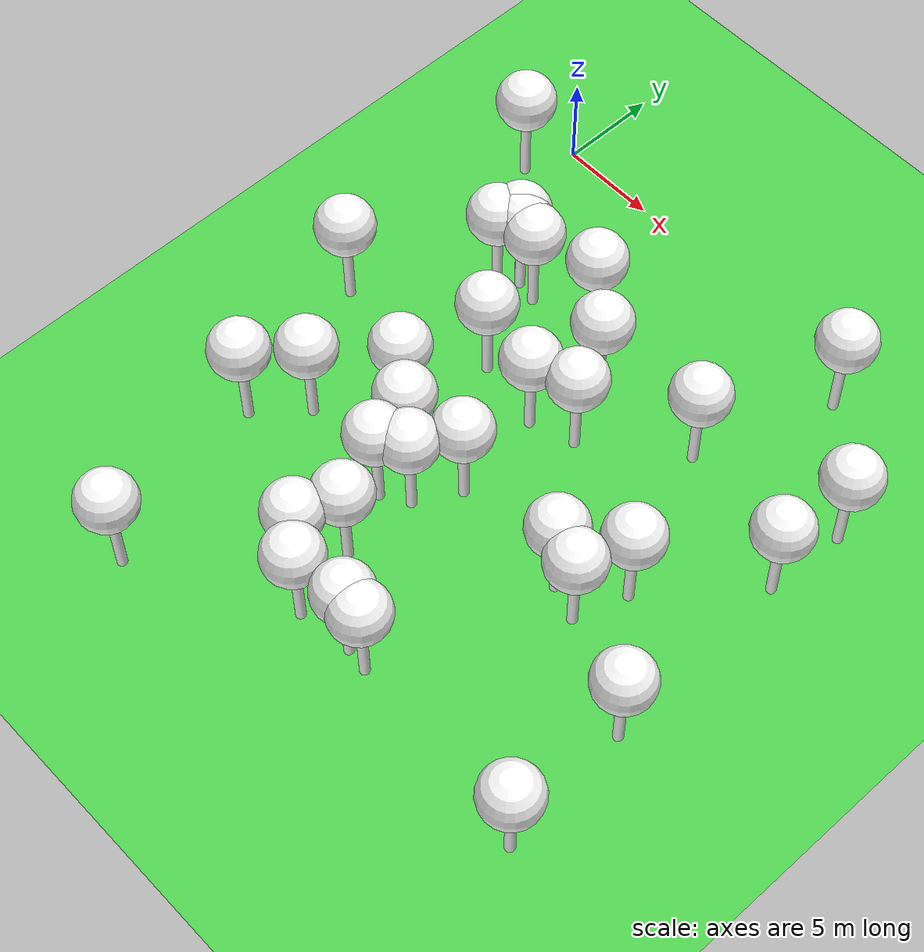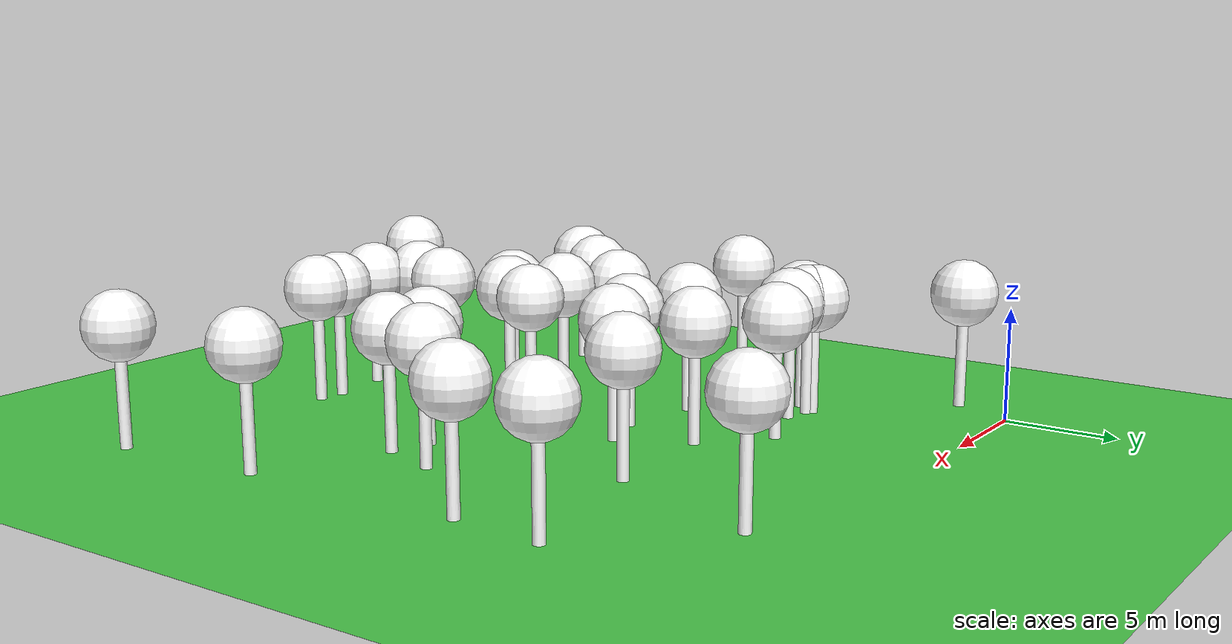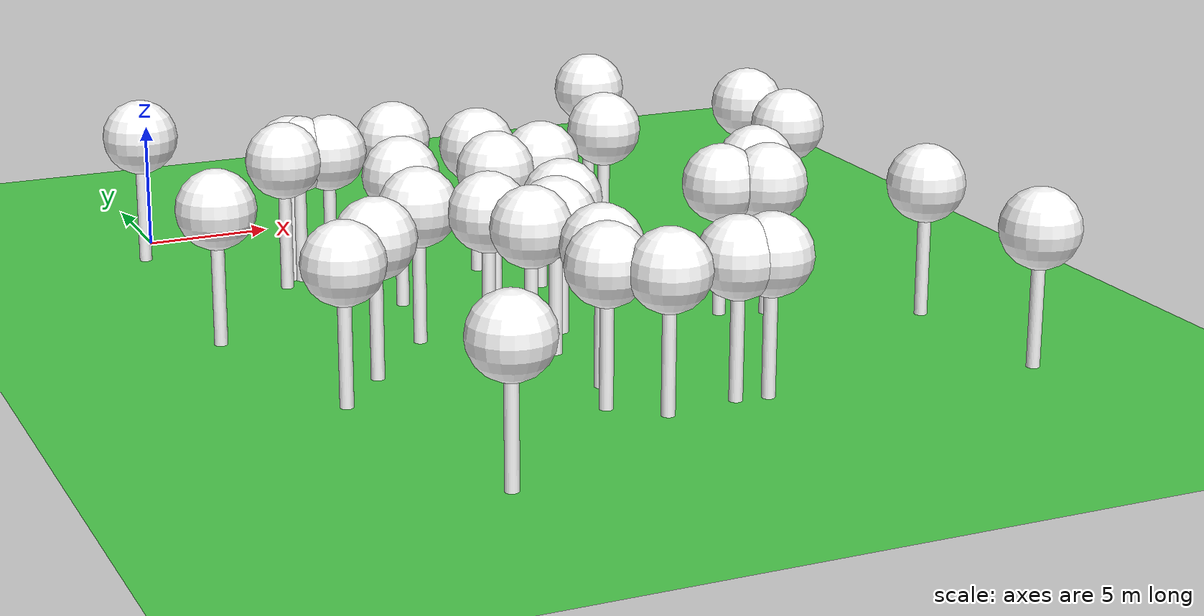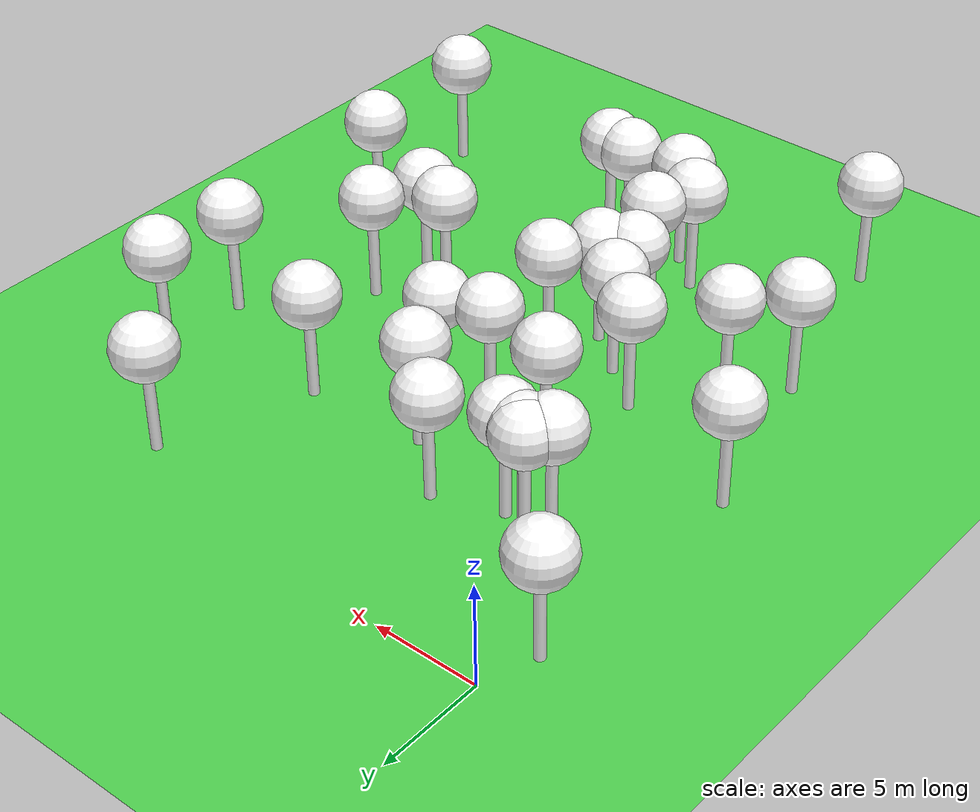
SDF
<sdf version="1.8">
 <world name="forest_world">
  <model name="tree_simple496">
   <static>1</static>
   <link name="link">
    <pose>0 0 0.1 0 -0 0</pose>
    <collision name="collision_trunk">
     <pose>0 0 2 0 -0 0</pose>
     <geometry><cylinder><radius>0.25</radius><length>4</length></cylinder></geometry>
    </collision>
    <collision name="collision_treetop">
     <pose>0 0 5.2 0 -0 0</pose>
     <geometry><sphere><radius>1.5</radius></sphere></geometry>
    </collision>
    <visual name="trunk_496">
     <pose>0 0 2 0 -0 0</pose>
     <geometry><cylinder><radius>0.25</radius><length>4</length></cylinder></geometry>
     <material>
      <ambient>0.5 0.5 0.5 1</ambient>
      <diffuse>1.0 1.0 1.0 1</diffuse>
      <specular>0.0 0.0 0.0 1</specular>
      <pbr>
       <metal>
        <albedo_map>file://textures/tree_simple_trunk.jpg</albedo_map>
        <metalness>0.0</metalness>
        <roughness>0.8</roughness>
       </metal>
      </pbr>
     </material>
    </visual>
    <visual name="treetop_496">
     <pose>0 0 5.2 0 -0 0</pose>
     <geometry><sphere><radius>1.5</radius></sphere></geometry>
     <material>
      <ambient>0.5 0.5 0.5 1</ambient>
      <diffuse>1.0 1.0 1.0 1</diffuse>
      <specular>0.0 0.0 0.0 1</specular>
      <pbr>
       <metal>
        <albedo_map>file://textures/tree_simple_treetop.jpg</albedo_map>
        <metalness>0.0</metalness>
        <roughness>0.9</roughness>
       </metal>
      </pbr>
     </material>
    </visual>
   </link>
   <pose>13.6194298432 -26.9856291803 0 0 -0 0</pose>
  </model>
  <model name="tree_simple478">
   <static>1</static>
   <link name="link">
    <pose>0 0 0.1 0 -0 0</pose>
    <collision name="collision_trunk">
     <pose>0 0 2 0 -0 0</pose>
     <geometry><cylinder><radius>0.25</radius><length>4</length></cylinder></geometry>
    </collision>
    <collision name="collision_treetop">
     <pose>0 0 5.2 0 -0 0</pose>
     <geometry><sphere><radius>1.5</radius></sphere></geometry>
    </collision>
    <visual name="trunk_478">
     <pose>0 0 2 0 -0 0</pose>
     <geometry><cylinder><radius>0.25</radius><length>4</length></cylinder></geometry>
     <material>
      <ambient>0.5 0.5 0.5 1</ambient>
      <diffuse>1.0 1.0 1.0 1</diffuse>
      <specular>0.0 0.0 0.0 1</specular>
      <pbr>
       <metal>
        <albedo_map>file://textures/tree_simple_trunk.jpg</albedo_map>
        <metalness>0.0</metalness>
        <roughness>0.8</roughness>
       </metal>
      </pbr>
     </material>
    </visual>
    <visual name="treetop_478">
     <pose>0 0 5.2 0 -0 0</pose>
     <geometry><sphere><radius>1.5</radius></sphere></geometry>
     <material>
      <ambient>0.5 0.5 0.5 1</ambient>
      <diffuse>1.0 1.0 1.0 1</diffuse>
      <specular>0.0 0.0 0.0 1</specular>
      <pbr>
       <metal>
        <albedo_map>file://textures/tree_simple_treetop.jpg</albedo_map>
        <metalness>0.0</metalness>
        <roughness>0.9</roughness>
       </metal>
      </pbr>
     </material>
    </visual>
   </link>
   <pose>6.74093075138 -12.3162984353 0 0 -0 0</pose>
  </model>
  <model name="tree_simple472">
   <static>1</static>
   <link name="link">
    <pose>0 0 0.1 0 -0 0</pose>
    <collision name="collision_trunk">
     <pose>0 0 2 0 -0 0</pose>
     <geometry><cylinder><radius>0.25</radius><length>4</length></cylinder></geometry>
    </collision>
    <collision name="collision_treetop">
     <pose>0 0 5.2 0 -0 0</pose>
     <geometry><sphere><radius>1.5</radius></sphere></geometry>
    </collision>
    <visual name="trunk_472">
     <pose>0 0 2 0 -0 0</pose>
     <geometry><cylinder><radius>0.25</radius><length>4</length></cylinder></geometry>
     <material>
      <ambient>0.5 0.5 0.5 1</ambient>
      <diffuse>1.0 1.0 1.0 1</diffuse>
      <specular>0.0 0.0 0.0 1</specular>
      <pbr>
       <metal>
        <albedo_map>file://textures/tree_simple_trunk.jpg</albedo_map>
        <metalness>0.0</metalness>
        <roughness>0.8</roughness>
       </metal>
      </pbr>
     </material>
    </visual>
    <visual name="treetop_472">
     <pose>0 0 5.2 0 -0 0</pose>
     <geometry><sphere><radius>1.5</radius></sphere></geometry>
     <material>
      <ambient>0.5 0.5 0.5 1</ambient>
      <diffuse>1.0 1.0 1.0 1</diffuse>
      <specular>0.0 0.0 0.0 1</specular>
      <pbr>
       <metal>
        <albedo_map>file://textures/tree_simple_treetop.jpg</albedo_map>
        <metalness>0.0</metalness>
        <roughness>0.9</roughness>
       </metal>
      </pbr>
     </material>
    </visual>
   </link>
   <pose>9.92228677952 -23.8303447852 0 0 -0 0</pose>
  </model>
  <model name="tree_simple463">
   <static>1</static>
   <link name="link">
    <pose>0 0 0.1 0 -0 0</pose>
    <collision name="collision_trunk">
     <pose>0 0 2 0 -0 0</pose>
     <geometry><cylinder><radius>0.25</radius><length>4</length></cylinder></geometry>
    </collision>
    <collision name="collision_treetop">
     <pose>0 0 5.2 0 -0 0</pose>
     <geometry><sphere><radius>1.5</radius></sphere></geometry>
    </collision>
    <visual name="trunk_463">
     <pose>0 0 2 0 -0 0</pose>
     <geometry><cylinder><radius>0.25</radius><length>4</length></cylinder></geometry>
     <material>
      <ambient>0.5 0.5 0.5 1</ambient>
      <diffuse>1.0 1.0 1.0 1</diffuse>
      <specular>0.0 0.0 0.0 1</specular>
      <pbr>
       <metal>
        <albedo_map>file://textures/tree_simple_trunk.jpg</albedo_map>
        <metalness>0.0</metalness>
        <roughness>0.8</roughness>
       </metal>
      </pbr>
     </material>
    </visual>
    <visual name="treetop_463">
     <pose>0 0 5.2 0 -0 0</pose>
     <geometry><sphere><radius>1.5</radius></sphere></geometry>
     <material>
      <ambient>0.5 0.5 0.5 1</ambient>
      <diffuse>1.0 1.0 1.0 1</diffuse>
      <specular>0.0 0.0 0.0 1</specular>
      <pbr>
       <metal>
        <albedo_map>file://textures/tree_simple_treetop.jpg</albedo_map>
        <metalness>0.0</metalness>
        <roughness>0.9</roughness>
       </metal>
      </pbr>
     </material>
    </visual>
   </link>
   <pose>4.14452898467 -7.71733475474 0 0 -0 0</pose>
  </model>
  <model name="tree_simple451">
   <static>1</static>
   <link name="link">
    <pose>0 0 0.1 0 -0 0</pose>
    <collision name="collision_trunk">
     <pose>0 0 2 0 -0 0</pose>
     <geometry><cylinder><radius>0.25</radius><length>4</length></cylinder></geometry>
    </collision>
    <collision name="collision_treetop">
     <pose>0 0 5.2 0 -0 0</pose>
     <geometry><sphere><radius>1.5</radius></sphere></geometry>
    </collision>
    <visual name="trunk_451">
     <pose>0 0 2 0 -0 0</pose>
     <geometry><cylinder><radius>0.25</radius><length>4</length></cylinder></geometry>
     <material>
      <ambient>0.5 0.5 0.5 1</ambient>
      <diffuse>1.0 1.0 1.0 1</diffuse>
      <specular>0.0 0.0 0.0 1</specular>
      <pbr>
       <metal>
        <albedo_map>file://textures/tree_simple_trunk.jpg</albedo_map>
        <metalness>0.0</metalness>
        <roughness>0.8</roughness>
       </metal>
      </pbr>
     </material>
    </visual>
    <visual name="treetop_451">
     <pose>0 0 5.2 0 -0 0</pose>
     <geometry><sphere><radius>1.5</radius></sphere></geometry>
     <material>
      <ambient>0.5 0.5 0.5 1</ambient>
      <diffuse>1.0 1.0 1.0 1</diffuse>
      <specular>0.0 0.0 0.0 1</specular>
      <pbr>
       <metal>
        <albedo_map>file://textures/tree_simple_treetop.jpg</albedo_map>
        <metalness>0.0</metalness>
        <roughness>0.9</roughness>
       </metal>
      </pbr>
     </material>
    </visual>
   </link>
   <pose>25.0880879186 -28.1508348671 0 0 -0 0</pose>
  </model>
  <model name="tree_simple439">
   <static>1</static>
   <link name="link">
    <pose>0 0 0.1 0 -0 0</pose>
    <collision name="collision_trunk">
     <pose>0 0 2 0 -0 0</pose>
     <geometry><cylinder><radius>0.25</radius><length>4</length></cylinder></geometry>
    </collision>
    <collision name="collision_treetop">
     <pose>0 0 5.2 0 -0 0</pose>
     <geometry><sphere><radius>1.5</radius></sphere></geometry>
    </collision>
    <visual name="trunk_439">
     <pose>0 0 2 0 -0 0</pose>
     <geometry><cylinder><radius>0.25</radius><length>4</length></cylinder></geometry>
     <material>
      <ambient>0.5 0.5 0.5 1</ambient>
      <diffuse>1.0 1.0 1.0 1</diffuse>
      <specular>0.0 0.0 0.0 1</specular>
      <pbr>
       <metal>
        <albedo_map>file://textures/tree_simple_trunk.jpg</albedo_map>
        <metalness>0.0</metalness>
        <roughness>0.8</roughness>
       </metal>
      </pbr>
     </material>
    </visual>
    <visual name="treetop_439">
     <pose>0 0 5.2 0 -0 0</pose>
     <geometry><sphere><radius>1.5</radius></sphere></geometry>
     <material>
      <ambient>0.5 0.5 0.5 1</ambient>
      <diffuse>1.0 1.0 1.0 1</diffuse>
      <specular>0.0 0.0 0.0 1</specular>
      <pbr>
       <metal>
        <albedo_map>file://textures/tree_simple_treetop.jpg</albedo_map>
        <metalness>0.0</metalness>
        <roughness>0.9</roughness>
       </metal>
      </pbr>
     </material>
    </visual>
   </link>
   <pose>8.56501316053 -20.7640585998 0 0 -0 0</pose>
  </model>
  <model name="tree_simple432">
   <static>1</static>
   <link name="link">
    <pose>0 0 0.1 0 -0 0</pose>
    <collision name="collision_trunk">
     <pose>0 0 2 0 -0 0</pose>
     <geometry><cylinder><radius>0.25</radius><length>4</length></cylinder></geometry>
    </collision>
    <collision name="collision_treetop">
     <pose>0 0 5.2 0 -0 0</pose>
     <geometry><sphere><radius>1.5</radius></sphere></geometry>
    </collision>
    <visual name="trunk_432">
     <pose>0 0 2 0 -0 0</pose>
     <geometry><cylinder><radius>0.25</radius><length>4</length></cylinder></geometry>
     <material>
      <ambient>0.5 0.5 0.5 1</ambient>
      <diffuse>1.0 1.0 1.0 1</diffuse>
      <specular>0.0 0.0 0.0 1</specular>
      <pbr>
       <metal>
        <albedo_map>file://textures/tree_simple_trunk.jpg</albedo_map>
        <metalness>0.0</metalness>
        <roughness>0.8</roughness>
       </metal>
      </pbr>
     </material>
    </visual>
    <visual name="treetop_432">
     <pose>0 0 5.2 0 -0 0</pose>
     <geometry><sphere><radius>1.5</radius></sphere></geometry>
     <material>
      <ambient>0.5 0.5 0.5 1</ambient>
      <diffuse>1.0 1.0 1.0 1</diffuse>
      <specular>0.0 0.0 0.0 1</specular>
      <pbr>
       <metal>
        <albedo_map>file://textures/tree_simple_treetop.jpg</albedo_map>
        <metalness>0.0</metalness>
        <roughness>0.9</roughness>
       </metal>
      </pbr>
     </material>
    </visual>
   </link>
   <pose>8.39657738542 -6.88848549894 0 0 -0 0</pose>
  </model>
  <model name="tree_simple428">
   <static>1</static>
   <link name="link">
    <pose>0 0 0.1 0 -0 0</pose>
    <collision name="collision_trunk">
     <pose>0 0 2 0 -0 0</pose>
     <geometry><cylinder><radius>0.25</radius><length>4</length></cylinder></geometry>
    </collision>
    <collision name="collision_treetop">
     <pose>0 0 5.2 0 -0 0</pose>
     <geometry><sphere><radius>1.5</radius></sphere></geometry>
    </collision>
    <visual name="trunk_428">
     <pose>0 0 2 0 -0 0</pose>
     <geometry><cylinder><radius>0.25</radius><length>4</length></cylinder></geometry>
     <material>
      <ambient>0.5 0.5 0.5 1</ambient>
      <diffuse>1.0 1.0 1.0 1</diffuse>
      <specular>0.0 0.0 0.0 1</specular>
      <pbr>
       <metal>
        <albedo_map>file://textures/tree_simple_trunk.jpg</albedo_map>
        <metalness>0.0</metalness>
        <roughness>0.8</roughness>
       </metal>
      </pbr>
     </material>
    </visual>
    <visual name="treetop_428">
     <pose>0 0 5.2 0 -0 0</pose>
     <geometry><sphere><radius>1.5</radius></sphere></geometry>
     <material>
      <ambient>0.5 0.5 0.5 1</ambient>
      <diffuse>1.0 1.0 1.0 1</diffuse>
      <specular>0.0 0.0 0.0 1</specular>
      <pbr>
       <metal>
        <albedo_map>file://textures/tree_simple_treetop.jpg</albedo_map>
        <metalness>0.0</metalness>
        <roughness>0.9</roughness>
       </metal>
      </pbr>
     </material>
    </visual>
   </link>
   <pose>9.87663766252 -19.9509422297 0 0 -0 0</pose>
  </model>
  <model name="tree_simple389">
   <static>1</static>
   <link name="link">
    <pose>0 0 0.1 0 -0 0</pose>
    <collision name="collision_trunk">
     <pose>0 0 2 0 -0 0</pose>
     <geometry><cylinder><radius>0.25</radius><length>4</length></cylinder></geometry>
    </collision>
    <collision name="collision_treetop">
     <pose>0 0 5.2 0 -0 0</pose>
     <geometry><sphere><radius>1.5</radius></sphere></geometry>
    </collision>
    <visual name="trunk_389">
     <pose>0 0 2 0 -0 0</pose>
     <geometry><cylinder><radius>0.25</radius><length>4</length></cylinder></geometry>
     <material>
      <ambient>0.5 0.5 0.5 1</ambient>
      <diffuse>1.0 1.0 1.0 1</diffuse>
      <specular>0.0 0.0 0.0 1</specular>
      <pbr>
       <metal>
        <albedo_map>file://textures/tree_simple_trunk.jpg</albedo_map>
        <metalness>0.0</metalness>
        <roughness>0.8</roughness>
       </metal>
      </pbr>
     </material>
    </visual>
    <visual name="treetop_389">
     <pose>0 0 5.2 0 -0 0</pose>
     <geometry><sphere><radius>1.5</radius></sphere></geometry>
     <material>
      <ambient>0.5 0.5 0.5 1</ambient>
      <diffuse>1.0 1.0 1.0 1</diffuse>
      <specular>0.0 0.0 0.0 1</specular>
      <pbr>
       <metal>
        <albedo_map>file://textures/tree_simple_treetop.jpg</albedo_map>
        <metalness>0.0</metalness>
        <roughness>0.9</roughness>
       </metal>
      </pbr>
     </material>
    </visual>
   </link>
   <pose>12.5934036343 -12.2598342596 0 0 -0 0</pose>
  </model>
  <model name="tree_simple377">
   <static>1</static>
   <link name="link">
    <pose>0 0 0.1 0 -0 0</pose>
    <collision name="collision_trunk">
     <pose>0 0 2 0 -0 0</pose>
     <geometry><cylinder><radius>0.25</radius><length>4</length></cylinder></geometry>
    </collision>
    <collision name="collision_treetop">
     <pose>0 0 5.2 0 -0 0</pose>
     <geometry><sphere><radius>1.5</radius></sphere></geometry>
    </collision>
    <visual name="trunk_377">
     <pose>0 0 2 0 -0 0</pose>
     <geometry><cylinder><radius>0.25</radius><length>4</length></cylinder></geometry>
     <material>
      <ambient>0.5 0.5 0.5 1</ambient>
      <diffuse>1.0 1.0 1.0 1</diffuse>
      <specular>0.0 0.0 0.0 1</specular>
      <pbr>
       <metal>
        <albedo_map>file://textures/tree_simple_trunk.jpg</albedo_map>
        <metalness>0.0</metalness>
        <roughness>0.8</roughness>
       </metal>
      </pbr>
     </material>
    </visual>
    <visual name="treetop_377">
     <pose>0 0 5.2 0 -0 0</pose>
     <geometry><sphere><radius>1.5</radius></sphere></geometry>
     <material>
      <ambient>0.5 0.5 0.5 1</ambient>
      <diffuse>1.0 1.0 1.0 1</diffuse>
      <specular>0.0 0.0 0.0 1</specular>
      <pbr>
       <metal>
        <albedo_map>file://textures/tree_simple_treetop.jpg</albedo_map>
        <metalness>0.0</metalness>
        <roughness>0.9</roughness>
       </metal>
      </pbr>
     </material>
    </visual>
   </link>
   <pose>10.8205708978 -27.3699142702 0 0 -0 0</pose>
  </model>
  <model name="tree_simple327">
   <static>1</static>
   <link name="link">
    <pose>0 0 0.1 0 -0 0</pose>
    <collision name="collision_trunk">
     <pose>0 0 2 0 -0 0</pose>
     <geometry><cylinder><radius>0.25</radius><length>4</length></cylinder></geometry>
    </collision>
    <collision name="collision_treetop">
     <pose>0 0 5.2 0 -0 0</pose>
     <geometry><sphere><radius>1.5</radius></sphere></geometry>
    </collision>
    <visual name="trunk_327">
     <pose>0 0 2 0 -0 0</pose>
     <geometry><cylinder><radius>0.25</radius><length>4</length></cylinder></geometry>
     <material>
      <ambient>0.5 0.5 0.5 1</ambient>
      <diffuse>1.0 1.0 1.0 1</diffuse>
      <specular>0.0 0.0 0.0 1</specular>
      <pbr>
       <metal>
        <albedo_map>file://textures/tree_simple_trunk.jpg</albedo_map>
        <metalness>0.0</metalness>
        <roughness>0.8</roughness>
       </metal>
      </pbr>
     </material>
    </visual>
    <visual name="treetop_327">
     <pose>0 0 5.2 0 -0 0</pose>
     <geometry><sphere><radius>1.5</radius></sphere></geometry>
     <material>
      <ambient>0.5 0.5 0.5 1</ambient>
      <diffuse>1.0 1.0 1.0 1</diffuse>
      <specular>0.0 0.0 0.0 1</specular>
      <pbr>
       <metal>
        <albedo_map>file://textures/tree_simple_treetop.jpg</albedo_map>
        <metalness>0.0</metalness>
        <roughness>0.9</roughness>
       </metal>
      </pbr>
     </material>
    </visual>
   </link>
   <pose>5.78438571624 -16.7663148306 0 0 -0 0</pose>
  </model>
  <model name="tree_simple317">
   <static>1</static>
   <link name="link">
    <pose>0 0 0.1 0 -0 0</pose>
    <collision name="collision_trunk">
     <pose>0 0 2 0 -0 0</pose>
     <geometry><cylinder><radius>0.25</radius><length>4</length></cylinder></geometry>
    </collision>
    <collision name="collision_treetop">
     <pose>0 0 5.2 0 -0 0</pose>
     <geometry><sphere><radius>1.5</radius></sphere></geometry>
    </collision>
    <visual name="trunk_317">
     <pose>0 0 2 0 -0 0</pose>
     <geometry><cylinder><radius>0.25</radius><length>4</length></cylinder></geometry>
     <material>
      <ambient>0.5 0.5 0.5 1</ambient>
      <diffuse>1.0 1.0 1.0 1</diffuse>
      <specular>0.0 0.0 0.0 1</specular>
      <pbr>
       <metal>
        <albedo_map>file://textures/tree_simple_trunk.jpg</albedo_map>
        <metalness>0.0</metalness>
        <roughness>0.8</roughness>
       </metal>
      </pbr>
     </material>
    </visual>
    <visual name="treetop_317">
     <pose>0 0 5.2 0 -0 0</pose>
     <geometry><sphere><radius>1.5</radius></sphere></geometry>
     <material>
      <ambient>0.5 0.5 0.5 1</ambient>
      <diffuse>1.0 1.0 1.0 1</diffuse>
      <specular>0.0 0.0 0.0 1</specular>
      <pbr>
       <metal>
        <albedo_map>file://textures/tree_simple_treetop.jpg</albedo_map>
        <metalness>0.0</metalness>
        <roughness>0.9</roughness>
       </metal>
      </pbr>
     </material>
    </visual>
   </link>
   <pose>1.01183279708 -22.2370296953 0 0 -0 0</pose>
  </model>
  <model name="tree_simple316">
   <static>1</static>
   <link name="link">
    <pose>0 0 0.1 0 -0 0</pose>
    <collision name="collision_trunk">
     <pose>0 0 2 0 -0 0</pose>
     <geometry><cylinder><radius>0.25</radius><length>4</length></cylinder></geometry>
    </collision>
    <collision name="collision_treetop">
     <pose>0 0 5.2 0 -0 0</pose>
     <geometry><sphere><radius>1.5</radius></sphere></geometry>
    </collision>
    <visual name="trunk_316">
     <pose>0 0 2 0 -0 0</pose>
     <geometry><cylinder><radius>0.25</radius><length>4</length></cylinder></geometry>
     <material>
      <ambient>0.5 0.5 0.5 1</ambient>
      <diffuse>1.0 1.0 1.0 1</diffuse>
      <specular>0.0 0.0 0.0 1</specular>
      <pbr>
       <metal>
        <albedo_map>file://textures/tree_simple_trunk.jpg</albedo_map>
        <metalness>0.0</metalness>
        <roughness>0.8</roughness>
       </metal>
      </pbr>
     </material>
    </visual>
    <visual name="treetop_316">
     <pose>0 0 5.2 0 -0 0</pose>
     <geometry><sphere><radius>1.5</radius></sphere></geometry>
     <material>
      <ambient>0.5 0.5 0.5 1</ambient>
      <diffuse>1.0 1.0 1.0 1</diffuse>
      <specular>0.0 0.0 0.0 1</specular>
      <pbr>
       <metal>
        <albedo_map>file://textures/tree_simple_treetop.jpg</albedo_map>
        <metalness>0.0</metalness>
        <roughness>0.9</roughness>
       </metal>
      </pbr>
     </material>
    </visual>
   </link>
   <pose>19.3529599153 -1.91242662106 0 0 -0 0</pose>
  </model>
  <model name="tree_simple309">
   <static>1</static>
   <link name="link">
    <pose>0 0 0.1 0 -0 0</pose>
    <collision name="collision_trunk">
     <pose>0 0 2 0 -0 0</pose>
     <geometry><cylinder><radius>0.25</radius><length>4</length></cylinder></geometry>
    </collision>
    <collision name="collision_treetop">
     <pose>0 0 5.2 0 -0 0</pose>
     <geometry><sphere><radius>1.5</radius></sphere></geometry>
    </collision>
    <visual name="trunk_309">
     <pose>0 0 2 0 -0 0</pose>
     <geometry><cylinder><radius>0.25</radius><length>4</length></cylinder></geometry>
     <material>
      <ambient>0.5 0.5 0.5 1</ambient>
      <diffuse>1.0 1.0 1.0 1</diffuse>
      <specular>0.0 0.0 0.0 1</specular>
      <pbr>
       <metal>
        <albedo_map>file://textures/tree_simple_trunk.jpg</albedo_map>
        <metalness>0.0</metalness>
        <roughness>0.8</roughness>
       </metal>
      </pbr>
     </material>
    </visual>
    <visual name="treetop_309">
     <pose>0 0 5.2 0 -0 0</pose>
     <geometry><sphere><radius>1.5</radius></sphere></geometry>
     <material>
      <ambient>0.5 0.5 0.5 1</ambient>
      <diffuse>1.0 1.0 1.0 1</diffuse>
      <specular>0.0 0.0 0.0 1</specular>
      <pbr>
       <metal>
        <albedo_map>file://textures/tree_simple_treetop.jpg</albedo_map>
        <metalness>0.0</metalness>
        <roughness>0.9</roughness>
       </metal>
      </pbr>
     </material>
    </visual>
   </link>
   <pose>19.1748935323 -18.8000539767 0 0 -0 0</pose>
  </model>
  <model name="tree_simple292">
   <static>1</static>
   <link name="link">
    <pose>0 0 0.1 0 -0 0</pose>
    <collision name="collision_trunk">
     <pose>0 0 2 0 -0 0</pose>
     <geometry><cylinder><radius>0.25</radius><length>4</length></cylinder></geometry>
    </collision>
    <collision name="collision_treetop">
     <pose>0 0 5.2 0 -0 0</pose>
     <geometry><sphere><radius>1.5</radius></sphere></geometry>
    </collision>
    <visual name="trunk_292">
     <pose>0 0 2 0 -0 0</pose>
     <geometry><cylinder><radius>0.25</radius><length>4</length></cylinder></geometry>
     <material>
      <ambient>0.5 0.5 0.5 1</ambient>
      <diffuse>1.0 1.0 1.0 1</diffuse>
      <specular>0.0 0.0 0.0 1</specular>
      <pbr>
       <metal>
        <albedo_map>file://textures/tree_simple_trunk.jpg</albedo_map>
        <metalness>0.0</metalness>
        <roughness>0.8</roughness>
       </metal>
      </pbr>
     </material>
    </visual>
    <visual name="treetop_292">
     <pose>0 0 5.2 0 -0 0</pose>
     <geometry><sphere><radius>1.5</radius></sphere></geometry>
     <material>
      <ambient>0.5 0.5 0.5 1</ambient>
      <diffuse>1.0 1.0 1.0 1</diffuse>
      <specular>0.0 0.0 0.0 1</specular>
      <pbr>
       <metal>
        <albedo_map>file://textures/tree_simple_treetop.jpg</albedo_map>
        <metalness>0.0</metalness>
        <roughness>0.9</roughness>
       </metal>
      </pbr>
     </material>
    </visual>
   </link>
   <pose>16.8917664362 -8.8290409333 0 0 -0 0</pose>
  </model>
  <model name="tree_simple222">
   <static>1</static>
   <link name="link">
    <pose>0 0 0.1 0 -0 0</pose>
    <collision name="collision_trunk">
     <pose>0 0 2 0 -0 0</pose>
     <geometry><cylinder><radius>0.25</radius><length>4</length></cylinder></geometry>
    </collision>
    <collision name="collision_treetop">
     <pose>0 0 5.2 0 -0 0</pose>
     <geometry><sphere><radius>1.5</radius></sphere></geometry>
    </collision>
    <visual name="trunk_222">
     <pose>0 0 2 0 -0 0</pose>
     <geometry><cylinder><radius>0.25</radius><length>4</length></cylinder></geometry>
     <material>
      <ambient>0.5 0.5 0.5 1</ambient>
      <diffuse>1.0 1.0 1.0 1</diffuse>
      <specular>0.0 0.0 0.0 1</specular>
      <pbr>
       <metal>
        <albedo_map>file://textures/tree_simple_trunk.jpg</albedo_map>
        <metalness>0.0</metalness>
        <roughness>0.8</roughness>
       </metal>
      </pbr>
     </material>
    </visual>
    <visual name="treetop_222">
     <pose>0 0 5.2 0 -0 0</pose>
     <geometry><sphere><radius>1.5</radius></sphere></geometry>
     <material>
      <ambient>0.5 0.5 0.5 1</ambient>
      <diffuse>1.0 1.0 1.0 1</diffuse>
      <specular>0.0 0.0 0.0 1</specular>
      <pbr>
       <metal>
        <albedo_map>file://textures/tree_simple_treetop.jpg</albedo_map>
        <metalness>0.0</metalness>
        <roughness>0.9</roughness>
       </metal>
      </pbr>
     </material>
    </visual>
   </link>
   <pose>3.92504774623 -7.51224141252 0 0 -0 0</pose>
  </model>
  <model name="tree_simple211">
   <static>1</static>
   <link name="link">
    <pose>0 0 0.1 0 -0 0</pose>
    <collision name="collision_trunk">
     <pose>0 0 2 0 -0 0</pose>
     <geometry><cylinder><radius>0.25</radius><length>4</length></cylinder></geometry>
    </collision>
    <collision name="collision_treetop">
     <pose>0 0 5.2 0 -0 0</pose>
     <geometry><sphere><radius>1.5</radius></sphere></geometry>
    </collision>
    <visual name="trunk_211">
     <pose>0 0 2 0 -0 0</pose>
     <geometry><cylinder><radius>0.25</radius><length>4</length></cylinder></geometry>
     <material>
      <ambient>0.5 0.5 0.5 1</ambient>
      <diffuse>1.0 1.0 1.0 1</diffuse>
      <specular>0.0 0.0 0.0 1</specular>
      <pbr>
       <metal>
        <albedo_map>file://textures/tree_simple_trunk.jpg</albedo_map>
        <metalness>0.0</metalness>
        <roughness>0.8</roughness>
       </metal>
      </pbr>
     </material>
    </visual>
    <visual name="treetop_211">
     <pose>0 0 5.2 0 -0 0</pose>
     <geometry><sphere><radius>1.5</radius></sphere></geometry>
     <material>
      <ambient>0.5 0.5 0.5 1</ambient>
      <diffuse>1.0 1.0 1.0 1</diffuse>
      <specular>0.0 0.0 0.0 1</specular>
      <pbr>
       <metal>
        <albedo_map>file://textures/tree_simple_treetop.jpg</albedo_map>
        <metalness>0.0</metalness>
        <roughness>0.9</roughness>
       </metal>
      </pbr>
     </material>
    </visual>
   </link>
   <pose>24.1088627432 -11.2741546154 0 0 -0 0</pose>
  </model>
  <model name="tree_simple195">
   <static>1</static>
   <link name="link">
    <pose>0 0 0.1 0 -0 0</pose>
    <collision name="collision_trunk">
     <pose>0 0 2 0 -0 0</pose>
     <geometry><cylinder><radius>0.25</radius><length>4</length></cylinder></geometry>
    </collision>
    <collision name="collision_treetop">
     <pose>0 0 5.2 0 -0 0</pose>
     <geometry><sphere><radius>1.5</radius></sphere></geometry>
    </collision>
    <visual name="trunk_195">
     <pose>0 0 2 0 -0 0</pose>
     <geometry><cylinder><radius>0.25</radius><length>4</length></cylinder></geometry>
     <material>
      <ambient>0.5 0.5 0.5 1</ambient>
      <diffuse>1.0 1.0 1.0 1</diffuse>
      <specular>0.0 0.0 0.0 1</specular>
      <pbr>
       <metal>
        <albedo_map>file://textures/tree_simple_trunk.jpg</albedo_map>
        <metalness>0.0</metalness>
        <roughness>0.8</roughness>
       </metal>
      </pbr>
     </material>
    </visual>
    <visual name="treetop_195">
     <pose>0 0 5.2 0 -0 0</pose>
     <geometry><sphere><radius>1.5</radius></sphere></geometry>
     <material>
      <ambient>0.5 0.5 0.5 1</ambient>
      <diffuse>1.0 1.0 1.0 1</diffuse>
      <specular>0.0 0.0 0.0 1</specular>
      <pbr>
       <metal>
        <albedo_map>file://textures/tree_simple_treetop.jpg</albedo_map>
        <metalness>0.0</metalness>
        <roughness>0.9</roughness>
       </metal>
      </pbr>
     </material>
    </visual>
   </link>
   <pose>2.97634626893 -19.931363898 0 0 -0 0</pose>
  </model>
  <model name="tree_simple191">
   <static>1</static>
   <link name="link">
    <pose>0 0 0.1 0 -0 0</pose>
    <collision name="collision_trunk">
     <pose>0 0 2 0 -0 0</pose>
     <geometry><cylinder><radius>0.25</radius><length>4</length></cylinder></geometry>
    </collision>
    <collision name="collision_treetop">
     <pose>0 0 5.2 0 -0 0</pose>
     <geometry><sphere><radius>1.5</radius></sphere></geometry>
    </collision>
    <visual name="trunk_191">
     <pose>0 0 2 0 -0 0</pose>
     <geometry><cylinder><radius>0.25</radius><length>4</length></cylinder></geometry>
     <material>
      <ambient>0.5 0.5 0.5 1</ambient>
      <diffuse>1.0 1.0 1.0 1</diffuse>
      <specular>0.0 0.0 0.0 1</specular>
      <pbr>
       <metal>
        <albedo_map>file://textures/tree_simple_trunk.jpg</albedo_map>
        <metalness>0.0</metalness>
        <roughness>0.8</roughness>
       </metal>
      </pbr>
     </material>
    </visual>
    <visual name="treetop_191">
     <pose>0 0 5.2 0 -0 0</pose>
     <geometry><sphere><radius>1.5</radius></sphere></geometry>
     <material>
      <ambient>0.5 0.5 0.5 1</ambient>
      <diffuse>1.0 1.0 1.0 1</diffuse>
      <specular>0.0 0.0 0.0 1</specular>
      <pbr>
       <metal>
        <albedo_map>file://textures/tree_simple_treetop.jpg</albedo_map>
        <metalness>0.0</metalness>
        <roughness>0.9</roughness>
       </metal>
      </pbr>
     </material>
    </visual>
   </link>
   <pose>7.88783183775 -18.3803184039 0 0 -0 0</pose>
  </model>
  <model name="tree_simple178">
   <static>1</static>
   <link name="link">
    <pose>0 0 0.1 0 -0 0</pose>
    <collision name="collision_trunk">
     <pose>0 0 2 0 -0 0</pose>
     <geometry><cylinder><radius>0.25</radius><length>4</length></cylinder></geometry>
    </collision>
    <collision name="collision_treetop">
     <pose>0 0 5.2 0 -0 0</pose>
     <geometry><sphere><radius>1.5</radius></sphere></geometry>
    </collision>
    <visual name="trunk_178">
     <pose>0 0 2 0 -0 0</pose>
     <geometry><cylinder><radius>0.25</radius><length>4</length></cylinder></geometry>
     <material>
      <ambient>0.5 0.5 0.5 1</ambient>
      <diffuse>1.0 1.0 1.0 1</diffuse>
      <specular>0.0 0.0 0.0 1</specular>
      <pbr>
       <metal>
        <albedo_map>file://textures/tree_simple_trunk.jpg</albedo_map>
        <metalness>0.0</metalness>
        <roughness>0.8</roughness>
       </metal>
      </pbr>
     </material>
    </visual>
    <visual name="treetop_178">
     <pose>0 0 5.2 0 -0 0</pose>
     <geometry><sphere><radius>1.5</radius></sphere></geometry>
     <material>
      <ambient>0.5 0.5 0.5 1</ambient>
      <diffuse>1.0 1.0 1.0 1</diffuse>
      <specular>0.0 0.0 0.0 1</specular>
      <pbr>
       <metal>
        <albedo_map>file://textures/tree_simple_treetop.jpg</albedo_map>
        <metalness>0.0</metalness>
        <roughness>0.9</roughness>
       </metal>
      </pbr>
     </material>
    </visual>
   </link>
   <pose>24.3791750449 -7.18218424398 0 0 -0 0</pose>
  </model>
  <model name="tree_simple168">
   <static>1</static>
   <link name="link">
    <pose>0 0 0.1 0 -0 0</pose>
    <collision name="collision_trunk">
     <pose>0 0 2 0 -0 0</pose>
     <geometry><cylinder><radius>0.25</radius><length>4</length></cylinder></geometry>
    </collision>
    <collision name="collision_treetop">
     <pose>0 0 5.2 0 -0 0</pose>
     <geometry><sphere><radius>1.5</radius></sphere></geometry>
    </collision>
    <visual name="trunk_168">
     <pose>0 0 2 0 -0 0</pose>
     <geometry><cylinder><radius>0.25</radius><length>4</length></cylinder></geometry>
     <material>
      <ambient>0.5 0.5 0.5 1</ambient>
      <diffuse>1.0 1.0 1.0 1</diffuse>
      <specular>0.0 0.0 0.0 1</specular>
      <pbr>
       <metal>
        <albedo_map>file://textures/tree_simple_trunk.jpg</albedo_map>
        <metalness>0.0</metalness>
        <roughness>0.8</roughness>
       </metal>
      </pbr>
     </material>
    </visual>
    <visual name="treetop_168">
     <pose>0 0 5.2 0 -0 0</pose>
     <geometry><sphere><radius>1.5</radius></sphere></geometry>
     <material>
      <ambient>0.5 0.5 0.5 1</ambient>
      <diffuse>1.0 1.0 1.0 1</diffuse>
      <specular>0.0 0.0 0.0 1</specular>
      <pbr>
       <metal>
        <albedo_map>file://textures/tree_simple_treetop.jpg</albedo_map>
        <metalness>0.0</metalness>
        <roughness>0.9</roughness>
       </metal>
      </pbr>
     </material>
    </visual>
   </link>
   <pose>14.8234440125 -27.1346741382 0 0 -0 0</pose>
  </model>
  <model name="tree_simple157">
   <static>1</static>
   <link name="link">
    <pose>0 0 0.1 0 -0 0</pose>
    <collision name="collision_trunk">
     <pose>0 0 2 0 -0 0</pose>
     <geometry><cylinder><radius>0.25</radius><length>4</length></cylinder></geometry>
    </collision>
    <collision name="collision_treetop">
     <pose>0 0 5.2 0 -0 0</pose>
     <geometry><sphere><radius>1.5</radius></sphere></geometry>
    </collision>
    <visual name="trunk_157">
     <pose>0 0 2 0 -0 0</pose>
     <geometry><cylinder><radius>0.25</radius><length>4</length></cylinder></geometry>
     <material>
      <ambient>0.5 0.5 0.5 1</ambient>
      <diffuse>1.0 1.0 1.0 1</diffuse>
      <specular>0.0 0.0 0.0 1</specular>
      <pbr>
       <metal>
        <albedo_map>file://textures/tree_simple_trunk.jpg</albedo_map>
        <metalness>0.0</metalness>
        <roughness>0.8</roughness>
       </metal>
      </pbr>
     </material>
    </visual>
    <visual name="treetop_157">
     <pose>0 0 5.2 0 -0 0</pose>
     <geometry><sphere><radius>1.5</radius></sphere></geometry>
     <material>
      <ambient>0.5 0.5 0.5 1</ambient>
      <diffuse>1.0 1.0 1.0 1</diffuse>
      <specular>0.0 0.0 0.0 1</specular>
      <pbr>
       <metal>
        <albedo_map>file://textures/tree_simple_treetop.jpg</albedo_map>
        <metalness>0.0</metalness>
        <roughness>0.9</roughness>
       </metal>
      </pbr>
     </material>
    </visual>
   </link>
   <pose>17.4643259264 -18.2232751505 0 0 -0 0</pose>
  </model>
  <model name="tree_simple156">
   <static>1</static>
   <link name="link">
    <pose>0 0 0.1 0 -0 0</pose>
    <collision name="collision_trunk">
     <pose>0 0 2 0 -0 0</pose>
     <geometry><cylinder><radius>0.25</radius><length>4</length></cylinder></geometry>
    </collision>
    <collision name="collision_treetop">
     <pose>0 0 5.2 0 -0 0</pose>
     <geometry><sphere><radius>1.5</radius></sphere></geometry>
    </collision>
    <visual name="trunk_156">
     <pose>0 0 2 0 -0 0</pose>
     <geometry><cylinder><radius>0.25</radius><length>4</length></cylinder></geometry>
     <material>
      <ambient>0.5 0.5 0.5 1</ambient>
      <diffuse>1.0 1.0 1.0 1</diffuse>
      <specular>0.0 0.0 0.0 1</specular>
      <pbr>
       <metal>
        <albedo_map>file://textures/tree_simple_trunk.jpg</albedo_map>
        <metalness>0.0</metalness>
        <roughness>0.8</roughness>
       </metal>
      </pbr>
     </material>
    </visual>
    <visual name="treetop_156">
     <pose>0 0 5.2 0 -0 0</pose>
     <geometry><sphere><radius>1.5</radius></sphere></geometry>
     <material>
      <ambient>0.5 0.5 0.5 1</ambient>
      <diffuse>1.0 1.0 1.0 1</diffuse>
      <specular>0.0 0.0 0.0 1</specular>
      <pbr>
       <metal>
        <albedo_map>file://textures/tree_simple_treetop.jpg</albedo_map>
        <metalness>0.0</metalness>
        <roughness>0.9</roughness>
       </metal>
      </pbr>
     </material>
    </visual>
   </link>
   <pose>20.0356149828 -16.1600287231 0 0 -0 0</pose>
  </model>
  <model name="tree_simple154">
   <static>1</static>
   <link name="link">
    <pose>0 0 0.1 0 -0 0</pose>
    <collision name="collision_trunk">
     <pose>0 0 2 0 -0 0</pose>
     <geometry><cylinder><radius>0.25</radius><length>4</length></cylinder></geometry>
    </collision>
    <collision name="collision_treetop">
     <pose>0 0 5.2 0 -0 0</pose>
     <geometry><sphere><radius>1.5</radius></sphere></geometry>
    </collision>
    <visual name="trunk_154">
     <pose>0 0 2 0 -0 0</pose>
     <geometry><cylinder><radius>0.25</radius><length>4</length></cylinder></geometry>
     <material>
      <ambient>0.5 0.5 0.5 1</ambient>
      <diffuse>1.0 1.0 1.0 1</diffuse>
      <specular>0.0 0.0 0.0 1</specular>
      <pbr>
       <metal>
        <albedo_map>file://textures/tree_simple_trunk.jpg</albedo_map>
        <metalness>0.0</metalness>
        <roughness>0.8</roughness>
       </metal>
      </pbr>
     </material>
    </visual>
    <visual name="treetop_154">
     <pose>0 0 5.2 0 -0 0</pose>
     <geometry><sphere><radius>1.5</radius></sphere></geometry>
     <material>
      <ambient>0.5 0.5 0.5 1</ambient>
      <diffuse>1.0 1.0 1.0 1</diffuse>
      <specular>0.0 0.0 0.0 1</specular>
      <pbr>
       <metal>
        <albedo_map>file://textures/tree_simple_treetop.jpg</albedo_map>
        <metalness>0.0</metalness>
        <roughness>0.9</roughness>
       </metal>
      </pbr>
     </material>
    </visual>
   </link>
   <pose>3.295584565 -8.44091810905 0 0 -0 0</pose>
  </model>
  <model name="tree_simple140">
   <static>1</static>
   <link name="link">
    <pose>0 0 0.1 0 -0 0</pose>
    <collision name="collision_trunk">
     <pose>0 0 2 0 -0 0</pose>
     <geometry><cylinder><radius>0.25</radius><length>4</length></cylinder></geometry>
    </collision>
    <collision name="collision_treetop">
     <pose>0 0 5.2 0 -0 0</pose>
     <geometry><sphere><radius>1.5</radius></sphere></geometry>
    </collision>
    <visual name="trunk_140">
     <pose>0 0 2 0 -0 0</pose>
     <geometry><cylinder><radius>0.25</radius><length>4</length></cylinder></geometry>
     <material>
      <ambient>0.5 0.5 0.5 1</ambient>
      <diffuse>1.0 1.0 1.0 1</diffuse>
      <specular>0.0 0.0 0.0 1</specular>
      <pbr>
       <metal>
        <albedo_map>file://textures/tree_simple_trunk.jpg</albedo_map>
        <metalness>0.0</metalness>
        <roughness>0.8</roughness>
       </metal>
      </pbr>
     </material>
    </visual>
    <visual name="treetop_140">
     <pose>0 0 5.2 0 -0 0</pose>
     <geometry><sphere><radius>1.5</radius></sphere></geometry>
     <material>
      <ambient>0.5 0.5 0.5 1</ambient>
      <diffuse>1.0 1.0 1.0 1</diffuse>
      <specular>0.0 0.0 0.0 1</specular>
      <pbr>
       <metal>
        <albedo_map>file://textures/tree_simple_treetop.jpg</albedo_map>
        <metalness>0.0</metalness>
        <roughness>0.9</roughness>
       </metal>
      </pbr>
     </material>
    </visual>
   </link>
   <pose>-1.08104360216 -14.0922455385 0 0 -0 0</pose>
  </model>
  <model name="tree_simple124">
   <static>1</static>
   <link name="link">
    <pose>0 0 0.1 0 -0 0</pose>
    <collision name="collision_trunk">
     <pose>0 0 2 0 -0 0</pose>
     <geometry><cylinder><radius>0.25</radius><length>4</length></cylinder></geometry>
    </collision>
    <collision name="collision_treetop">
     <pose>0 0 5.2 0 -0 0</pose>
     <geometry><sphere><radius>1.5</radius></sphere></geometry>
    </collision>
    <visual name="trunk_124">
     <pose>0 0 2 0 -0 0</pose>
     <geometry><cylinder><radius>0.25</radius><length>4</length></cylinder></geometry>
     <material>
      <ambient>0.5 0.5 0.5 1</ambient>
      <diffuse>1.0 1.0 1.0 1</diffuse>
      <specular>0.0 0.0 0.0 1</specular>
      <pbr>
       <metal>
        <albedo_map>file://textures/tree_simple_trunk.jpg</albedo_map>
        <metalness>0.0</metalness>
        <roughness>0.8</roughness>
       </metal>
      </pbr>
     </material>
    </visual>
    <visual name="treetop_124">
     <pose>0 0 5.2 0 -0 0</pose>
     <geometry><sphere><radius>1.5</radius></sphere></geometry>
     <material>
      <ambient>0.5 0.5 0.5 1</ambient>
      <diffuse>1.0 1.0 1.0 1</diffuse>
      <specular>0.0 0.0 0.0 1</specular>
      <pbr>
       <metal>
        <albedo_map>file://textures/tree_simple_treetop.jpg</albedo_map>
        <metalness>0.0</metalness>
        <roughness>0.9</roughness>
       </metal>
      </pbr>
     </material>
    </visual>
   </link>
   <pose>5.29940018808 -7.97080739541 0 0 -0 0</pose>
  </model>
  <model name="tree_simple106">
   <static>1</static>
   <link name="link">
    <pose>0 0 0.1 0 -0 0</pose>
    <collision name="collision_trunk">
     <pose>0 0 2 0 -0 0</pose>
     <geometry><cylinder><radius>0.25</radius><length>4</length></cylinder></geometry>
    </collision>
    <collision name="collision_treetop">
     <pose>0 0 5.2 0 -0 0</pose>
     <geometry><sphere><radius>1.5</radius></sphere></geometry>
    </collision>
    <visual name="trunk_106">
     <pose>0 0 2 0 -0 0</pose>
     <geometry><cylinder><radius>0.25</radius><length>4</length></cylinder></geometry>
     <material>
      <ambient>0.5 0.5 0.5 1</ambient>
      <diffuse>1.0 1.0 1.0 1</diffuse>
      <specular>0.0 0.0 0.0 1</specular>
      <pbr>
       <metal>
        <albedo_map>file://textures/tree_simple_trunk.jpg</albedo_map>
        <metalness>0.0</metalness>
        <roughness>0.8</roughness>
       </metal>
      </pbr>
     </material>
    </visual>
    <visual name="treetop_106">
     <pose>0 0 5.2 0 -0 0</pose>
     <geometry><sphere><radius>1.5</radius></sphere></geometry>
     <material>
      <ambient>0.5 0.5 0.5 1</ambient>
      <diffuse>1.0 1.0 1.0 1</diffuse>
      <specular>0.0 0.0 0.0 1</specular>
      <pbr>
       <metal>
        <albedo_map>file://textures/tree_simple_treetop.jpg</albedo_map>
        <metalness>0.0</metalness>
        <roughness>0.9</roughness>
       </metal>
      </pbr>
     </material>
    </visual>
   </link>
   <pose>-0.906213194622 -2.57618131058 0 0 -0 0</pose>
  </model>
  <model name="tree_simple80">
   <static>1</static>
   <link name="link">
    <pose>0 0 0.1 0 -0 0</pose>
    <collision name="collision_trunk">
     <pose>0 0 2 0 -0 0</pose>
     <geometry><cylinder><radius>0.25</radius><length>4</length></cylinder></geometry>
    </collision>
    <collision name="collision_treetop">
     <pose>0 0 5.2 0 -0 0</pose>
     <geometry><sphere><radius>1.5</radius></sphere></geometry>
    </collision>
    <visual name="trunk_80">
     <pose>0 0 2 0 -0 0</pose>
     <geometry><cylinder><radius>0.25</radius><length>4</length></cylinder></geometry>
     <material>
      <ambient>0.5 0.5 0.5 1</ambient>
      <diffuse>1.0 1.0 1.0 1</diffuse>
      <specular>0.0 0.0 0.0 1</specular>
      <pbr>
       <metal>
        <albedo_map>file://textures/tree_simple_trunk.jpg</albedo_map>
        <metalness>0.0</metalness>
        <roughness>0.8</roughness>
       </metal>
      </pbr>
     </material>
    </visual>
    <visual name="treetop_80">
     <pose>0 0 5.2 0 -0 0</pose>
     <geometry><sphere><radius>1.5</radius></sphere></geometry>
     <material>
      <ambient>0.5 0.5 0.5 1</ambient>
      <diffuse>1.0 1.0 1.0 1</diffuse>
      <specular>0.0 0.0 0.0 1</specular>
      <pbr>
       <metal>
        <albedo_map>file://textures/tree_simple_treetop.jpg</albedo_map>
        <metalness>0.0</metalness>
        <roughness>0.9</roughness>
       </metal>
      </pbr>
     </material>
    </visual>
   </link>
   <pose>11.0693190469 -17.8172800913 0 0 -0 0</pose>
  </model>
  <model name="tree_simple61">
   <static>1</static>
   <link name="link">
    <pose>0 0 0.1 0 -0 0</pose>
    <collision name="collision_trunk">
     <pose>0 0 2 0 -0 0</pose>
     <geometry><cylinder><radius>0.25</radius><length>4</length></cylinder></geometry>
    </collision>
    <collision name="collision_treetop">
     <pose>0 0 5.2 0 -0 0</pose>
     <geometry><sphere><radius>1.5</radius></sphere></geometry>
    </collision>
    <visual name="trunk_61">
     <pose>0 0 2 0 -0 0</pose>
     <geometry><cylinder><radius>0.25</radius><length>4</length></cylinder></geometry>
     <material>
      <ambient>0.5 0.5 0.5 1</ambient>
      <diffuse>1.0 1.0 1.0 1</diffuse>
      <specular>0.0 0.0 0.0 1</specular>
      <pbr>
       <metal>
        <albedo_map>file://textures/tree_simple_trunk.jpg</albedo_map>
        <metalness>0.0</metalness>
        <roughness>0.8</roughness>
       </metal>
      </pbr>
     </material>
    </visual>
    <visual name="treetop_61">
     <pose>0 0 5.2 0 -0 0</pose>
     <geometry><sphere><radius>1.5</radius></sphere></geometry>
     <material>
      <ambient>0.5 0.5 0.5 1</ambient>
      <diffuse>1.0 1.0 1.0 1</diffuse>
      <specular>0.0 0.0 0.0 1</specular>
      <pbr>
       <metal>
        <albedo_map>file://textures/tree_simple_treetop.jpg</albedo_map>
        <metalness>0.0</metalness>
        <roughness>0.9</roughness>
       </metal>
      </pbr>
     </material>
    </visual>
   </link>
   <pose>11.1083893096 -9.22601092506 0 0 -0 0</pose>
  </model>
  <model name="tree_simple40">
   <static>1</static>
   <link name="link">
    <pose>0 0 0.1 0 -0 0</pose>
    <collision name="collision_trunk">
     <pose>0 0 2 0 -0 0</pose>
     <geometry><cylinder><radius>0.25</radius><length>4</length></cylinder></geometry>
    </collision>
    <collision name="collision_treetop">
     <pose>0 0 5.2 0 -0 0</pose>
     <geometry><sphere><radius>1.5</radius></sphere></geometry>
    </collision>
    <visual name="trunk_40">
     <pose>0 0 2 0 -0 0</pose>
     <geometry><cylinder><radius>0.25</radius><length>4</length></cylinder></geometry>
     <material>
      <ambient>0.5 0.5 0.5 1</ambient>
      <diffuse>1.0 1.0 1.0 1</diffuse>
      <specular>0.0 0.0 0.0 1</specular>
      <pbr>
       <metal>
        <albedo_map>file://textures/tree_simple_trunk.jpg</albedo_map>
        <metalness>0.0</metalness>
        <roughness>0.8</roughness>
       </metal>
      </pbr>
     </material>
    </visual>
    <visual name="treetop_40">
     <pose>0 0 5.2 0 -0 0</pose>
     <geometry><sphere><radius>1.5</radius></sphere></geometry>
     <material>
      <ambient>0.5 0.5 0.5 1</ambient>
      <diffuse>1.0 1.0 1.0 1</diffuse>
      <specular>0.0 0.0 0.0 1</specular>
      <pbr>
       <metal>
        <albedo_map>file://textures/tree_simple_treetop.jpg</albedo_map>
        <metalness>0.0</metalness>
        <roughness>0.9</roughness>
       </metal>
      </pbr>
     </material>
    </visual>
   </link>
   <pose>10.3610745353 -13.0055256356 0 0 -0 0</pose>
  </model>
  <model name="tree_simple39">
   <static>1</static>
   <link name="link">
    <pose>0 0 0.1 0 -0 0</pose>
    <collision name="collision_trunk">
     <pose>0 0 2 0 -0 0</pose>
     <geometry><cylinder><radius>0.25</radius><length>4</length></cylinder></geometry>
    </collision>
    <collision name="collision_treetop">
     <pose>0 0 5.2 0 -0 0</pose>
     <geometry><sphere><radius>1.5</radius></sphere></geometry>
    </collision>
    <visual name="trunk_39">
     <pose>0 0 2 0 -0 0</pose>
     <geometry><cylinder><radius>0.25</radius><length>4</length></cylinder></geometry>
     <material>
      <ambient>0.5 0.5 0.5 1</ambient>
      <diffuse>1.0 1.0 1.0 1</diffuse>
      <specular>0.0 0.0 0.0 1</specular>
      <pbr>
       <metal>
        <albedo_map>file://textures/tree_simple_trunk.jpg</albedo_map>
        <metalness>0.0</metalness>
        <roughness>0.8</roughness>
       </metal>
      </pbr>
     </material>
    </visual>
    <visual name="treetop_39">
     <pose>0 0 5.2 0 -0 0</pose>
     <geometry><sphere><radius>1.5</radius></sphere></geometry>
     <material>
      <ambient>0.5 0.5 0.5 1</ambient>
      <diffuse>1.0 1.0 1.0 1</diffuse>
      <specular>0.0 0.0 0.0 1</specular>
      <pbr>
       <metal>
        <albedo_map>file://textures/tree_simple_treetop.jpg</albedo_map>
        <metalness>0.0</metalness>
        <roughness>0.9</roughness>
       </metal>
      </pbr>
     </material>
    </visual>
   </link>
   <pose>3.31871539321 -31.4823750144 0 0 -0 0</pose>
  </model>
  <model name="tree_simple38">
   <static>1</static>
   <link name="link">
    <pose>0 0 0.1 0 -0 0</pose>
    <collision name="collision_trunk">
     <pose>0 0 2 0 -0 0</pose>
     <geometry><cylinder><radius>0.25</radius><length>4</length></cylinder></geometry>
    </collision>
    <collision name="collision_treetop">
     <pose>0 0 5.2 0 -0 0</pose>
     <geometry><sphere><radius>1.5</radius></sphere></geometry>
    </collision>
    <visual name="trunk_38">
     <pose>0 0 2 0 -0 0</pose>
     <geometry><cylinder><radius>0.25</radius><length>4</length></cylinder></geometry>
     <material>
      <ambient>0.5 0.5 0.5 1</ambient>
      <diffuse>1.0 1.0 1.0 1</diffuse>
      <specular>0.0 0.0 0.0 1</specular>
      <pbr>
       <metal>
        <albedo_map>file://textures/tree_simple_trunk.jpg</albedo_map>
        <metalness>0.0</metalness>
        <roughness>0.8</roughness>
       </metal>
      </pbr>
     </material>
    </visual>
    <visual name="treetop_38">
     <pose>0 0 5.2 0 -0 0</pose>
     <geometry><sphere><radius>1.5</radius></sphere></geometry>
     <material>
      <ambient>0.5 0.5 0.5 1</ambient>
      <diffuse>1.0 1.0 1.0 1</diffuse>
      <specular>0.0 0.0 0.0 1</specular>
      <pbr>
       <metal>
        <albedo_map>file://textures/tree_simple_treetop.jpg</albedo_map>
        <metalness>0.0</metalness>
        <roughness>0.9</roughness>
       </metal>
      </pbr>
     </material>
    </visual>
   </link>
   <pose>9.1535103592 -25.9369722849 0 0 -0 0</pose>
  </model>
  <model name="tree_simple3">
   <static>1</static>
   <link name="link">
    <pose>0 0 0.1 0 -0 0</pose>
    <collision name="collision_trunk">
     <pose>0 0 2 0 -0 0</pose>
     <geometry><cylinder><radius>0.25</radius><length>4</length></cylinder></geometry>
    </collision>
    <collision name="collision_treetop">
     <pose>0 0 5.2 0 -0 0</pose>
     <geometry><sphere><radius>1.5</radius></sphere></geometry>
    </collision>
    <visual name="trunk_3">
     <pose>0 0 2 0 -0 0</pose>
     <geometry><cylinder><radius>0.25</radius><length>4</length></cylinder></geometry>
     <material>
      <ambient>0.5 0.5 0.5 1</ambient>
      <diffuse>1.0 1.0 1.0 1</diffuse>
      <specular>0.0 0.0 0.0 1</specular>
      <pbr>
       <metal>
        <albedo_map>file://textures/tree_simple_trunk.jpg</albedo_map>
        <metalness>0.0</metalness>
        <roughness>0.8</roughness>
       </metal>
      </pbr>
     </material>
    </visual>
    <visual name="treetop_3">
     <pose>0 0 5.2 0 -0 0</pose>
     <geometry><sphere><radius>1.5</radius></sphere></geometry>
     <material>
      <ambient>0.5 0.5 0.5 1</ambient>
      <diffuse>1.0 1.0 1.0 1</diffuse>
      <specular>0.0 0.0 0.0 1</specular>
      <pbr>
       <metal>
        <albedo_map>file://textures/tree_simple_treetop.jpg</albedo_map>
        <metalness>0.0</metalness>
        <roughness>0.9</roughness>
       </metal>
      </pbr>
     </material>
    </visual>
   </link>
   <pose>24.571631205 -21.3215863424 0 0 -0 0</pose>
  </model>
  <model name="ground_plane">
   <static>true</static>
   <link name="link">
    <collision name="collision">
     <geometry><plane><normal>0 0 1</normal><size>250 250</size></plane></geometry>
     <surface><friction><ode><mu>1</mu><mu2>1</mu2></ode></friction></surface>
    </collision>
    <visual name="grass">
     <cast_shadows>false</cast_shadows>
     <geometry><mesh><uri>file://textures/grass_plane.dae</uri><scale>1 1 1</scale></mesh></geometry>
     <material>
      <ambient>0.2 0.6 0.2 1</ambient>
      <diffuse>0.3 0.8 0.3 1</diffuse>
      <specular>0.1 0.1 0.1 1</specular>
      <pbr>
       <metal>
        <albedo_map>file://textures/grass_seamless.jpg</albedo_map>
        <metalness>0.0</metalness>
        <roughness>0.9</roughness>
       </metal>
      </pbr>
     </material>
    </visual>
   </link>
  </model>
 </world>
</sdf>
